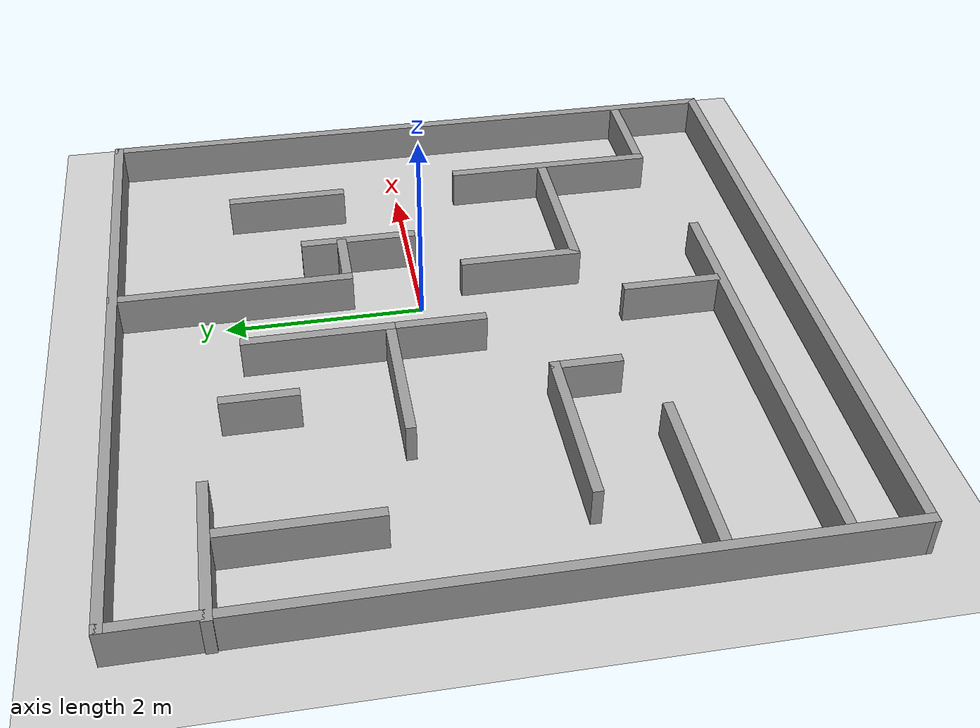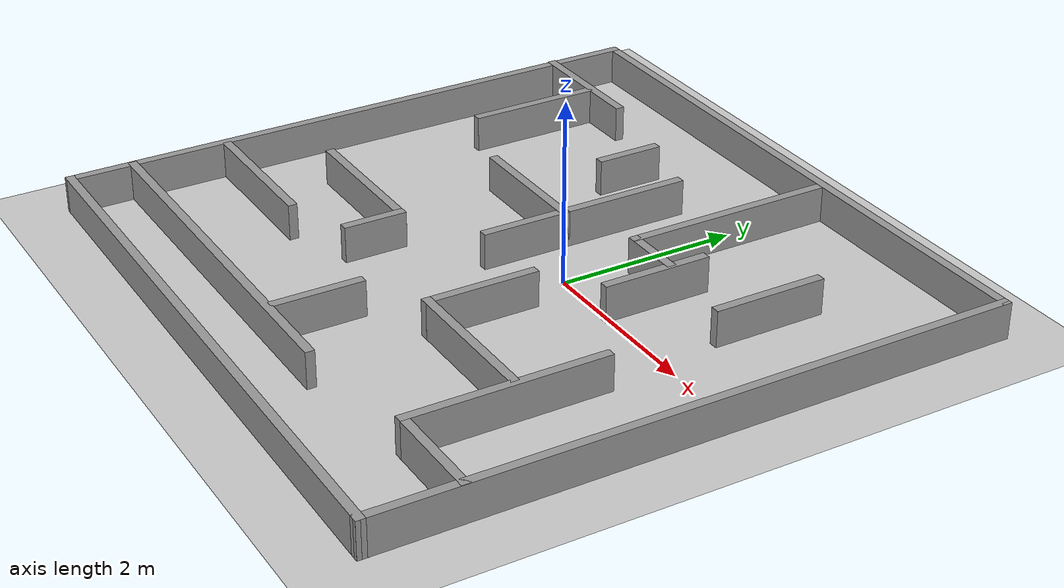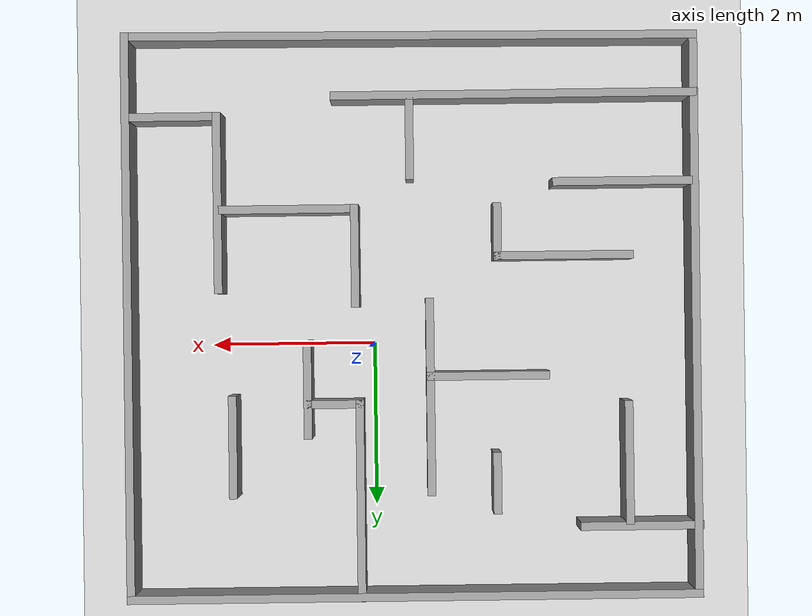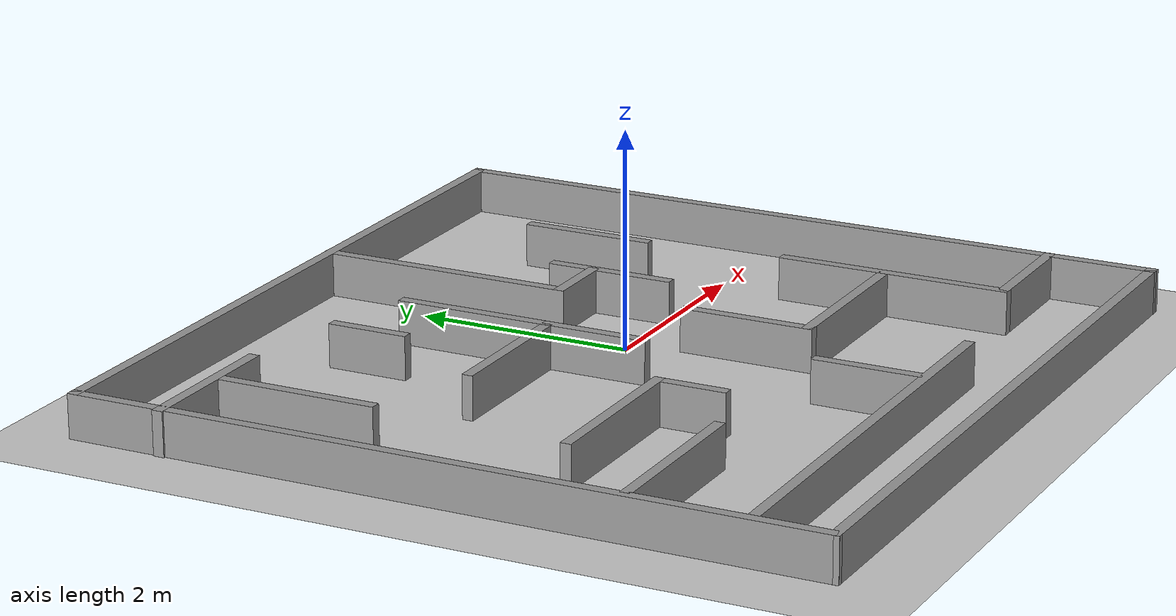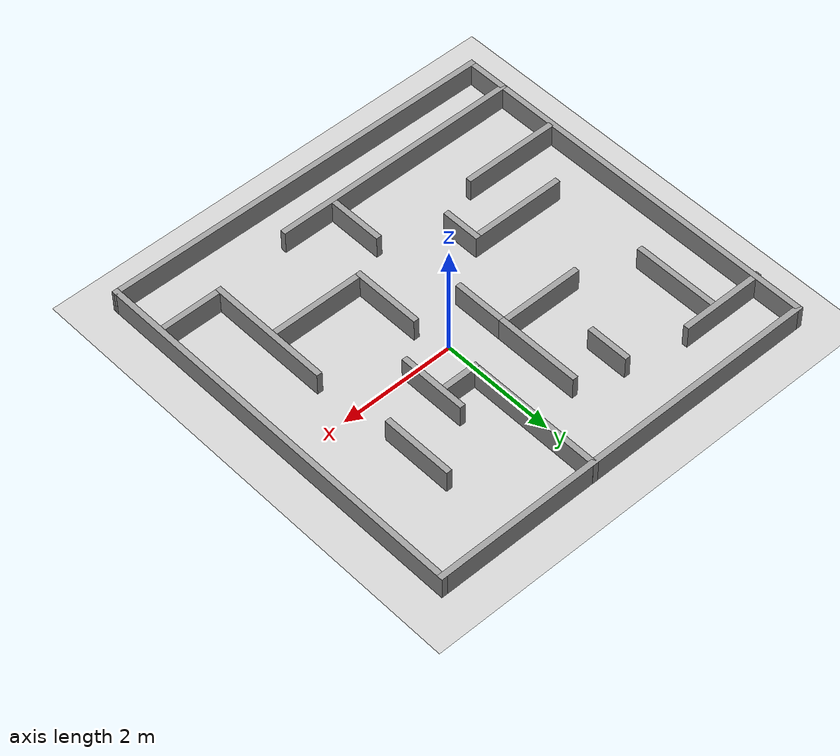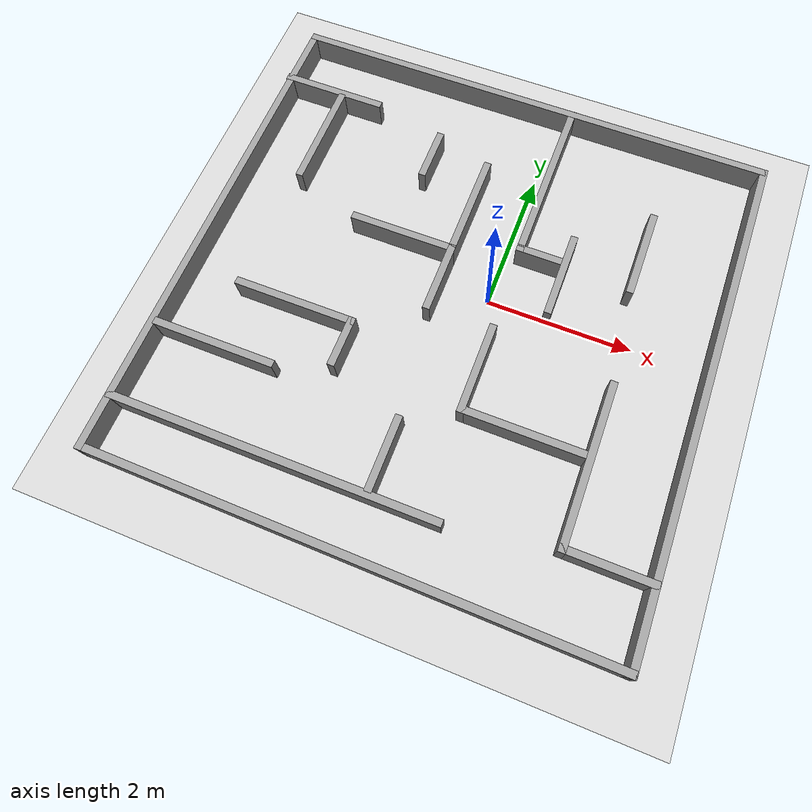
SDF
<sdf version="1.7">
 <world name="default">
  <light name="sun" type="directional">
   <pose>0 0 10 0 -0 0</pose>
   <diffuse>0.8 0.8 0.8 1</diffuse>
   <specular>0.2 0.2 0.2 1</specular>
   <attenuation>
    <range>1000</range>
    <constant>0.9</constant>
    <linear>0.01</linear>
    <quadratic>0.001</quadratic>
   </attenuation>
   <direction>-0.5 0.1 -0.9</direction>
   <spot><inner_angle>0</inner_angle><outer_angle>0</outer_angle><falloff>0</falloff></spot>
  </light>
  <model name="ground_plane">
   <static>1</static>
   <link name="link">
    <collision name="collision">
     <geometry><plane><normal>0 0 1</normal><size>100 100</size></plane></geometry>
     <surface>
      <contact><collide_bitmask>65535</collide_bitmask></contact>
      <friction><ode><mu>100</mu><mu2>50</mu2></ode></friction>
     </surface>
    </collision>
    <visual name="visual">
     <cast_shadows>0</cast_shadows>
     <geometry><plane><normal>0 0 1</normal><size>100 100</size></plane></geometry>
     <material>
      <script><uri>file://media/materials/scripts/gazebo.material</uri><name>Gazebo/Grey</name></script>
     </material>
    </visual>
   </link>
  </model>
  <gravity>0 0 -9.8</gravity>
  <magnetic_field>6e-06 2.3e-05 -4.2e-05</magnetic_field>
  <atmosphere type="adiabatic"/>
  <physics type="ode">
   <max_step_size>0.001</max_step_size>
   <real_time_factor>1</real_time_factor>
   <real_time_update_rate>1000</real_time_update_rate>
  </physics>
  <scene><ambient>0.4 0.4 0.4 1</ambient><background>0.7 0.7 0.7 1</background><shadows>1</shadows></scene>
  <spherical_coordinates>
   <surface_model>EARTH_WGS84</surface_model>
   <latitude_deg>0</latitude_deg>
   <longitude_deg>0</longitude_deg>
   <elevation>0</elevation>
   <heading_deg>0</heading_deg>
  </spherical_coordinates>
  <model name="newmap.world">
   <pose>-0.470645 -0.340979 0 0 -0 0</pose>
   <link name="Wall_0">
    <collision name="Wall_0_Collision">
     <geometry><box><size>7 0.1 0.4</size></box></geometry>
     <pose>0 0 0.2 0 -0 0</pose>
    </collision>
    <visual name="Wall_0_Visual">
     <pose>0 0 0.2 0 -0 0</pose>
     <geometry><box><size>7 0.1 0.4</size></box></geometry>
     <material>
      <script><uri>file://media/materials/scripts/gazebo.material</uri><name>Gazebo/Grey</name></script>
      <ambient>1 1 1 1</ambient>
     </material>
     <meta><layer>0</layer></meta>
    </visual>
    <pose>0.008319 3.41883 0 0 -0 0</pose>
   </link>
   <link name="Wall_1">
    <collision name="Wall_1_Collision">
     <geometry><box><size>6.93931 0.1 0.4</size></box></geometry>
     <pose>0 0 0.2 0 -0 0</pose>
    </collision>
    <visual name="Wall_1_Visual">
     <pose>0 0 0.2 0 -0 0</pose>
     <geometry><box><size>6.93931 0.1 0.4</size></box></geometry>
     <material>
      <script><uri>file://media/materials/scripts/gazebo.material</uri><name>Gazebo/Grey</name></script>
      <ambient>1 1 1 1</ambient>
     </material>
     <meta><layer>0</layer></meta>
    </visual>
    <pose>3.45832 -0.000813 0 0 -0 -1.5708</pose>
   </link>
   <link name="Wall_10">
    <collision name="Wall_10_Collision">
     <geometry><box><size>0.75 0.1 0.4</size></box></geometry>
     <pose>0 0 0.2 0 -0 0</pose>
    </collision>
    <visual name="Wall_10_Visual">
     <pose>0 0 0.2 0 -0 0</pose>
     <geometry><box><size>0.75 0.1 0.4</size></box></geometry>
     <material>
      <script><uri>file://media/materials/scripts/gazebo.material</uri><name>Gazebo/Grey</name></script>
      <ambient>1 1 1 1</ambient>
     </material>
     <meta><layer>0</layer></meta>
    </visual>
    <pose>-1.00868 2.05483 0 0 -0 -1.5708</pose>
   </link>
   <link name="Wall_13">
    <collision name="Wall_13_Collision">
     <geometry><box><size>2.44997 0.1 0.4</size></box></geometry>
     <pose>0 0 0.2 0 -0 0</pose>
    </collision>
    <visual name="Wall_13_Visual">
     <pose>0 0 0.2 0 -0 0</pose>
     <geometry><box><size>2.44997 0.1 0.4</size></box></geometry>
     <material>
      <script><uri>file://media/materials/scripts/gazebo.material</uri><name>Gazebo/Grey</name></script>
      <ambient>1 1 1 1</ambient>
     </material>
     <meta><layer>0</layer></meta>
    </visual>
    <pose>0.654319 2.24583 0 0 -0 -1.5708</pose>
   </link>
   <link name="Wall_17">
    <collision name="Wall_17_Collision">
     <geometry><box><size>4.45031 0.1 0.4</size></box></geometry>
     <pose>0 0 0.2 0 -0 0</pose>
    </collision>
    <visual name="Wall_17_Visual">
     <pose>0 0 0.2 0 -0 0</pose>
     <geometry><box><size>4.45031 0.1 0.4</size></box></geometry>
     <material>
      <script><uri>file://media/materials/scripts/gazebo.material</uri><name>Gazebo/Grey</name></script>
      <ambient>1 1 1 1</ambient>
     </material>
     <meta><layer>0</layer></meta>
    </visual>
    <pose>-1.25368 -2.67317 0 0 -0 0</pose>
   </link>
   <link name="Wall_19">
    <collision name="Wall_19_Collision">
     <geometry><box><size>1.69981 0.1 0.4</size></box></geometry>
     <pose>0 0 0.2 0 -0 0</pose>
    </collision>
    <visual name="Wall_19_Visual">
     <pose>0 0 0.2 0 -0 0</pose>
     <geometry><box><size>1.69981 0.1 0.4</size></box></geometry>
     <material>
      <script><uri>file://media/materials/scripts/gazebo.material</uri><name>Gazebo/Grey</name></script>
      <ambient>1 1 1 1</ambient>
     </material>
     <meta><layer>0</layer></meta>
    </visual>
    <pose>-2.56768 -1.60017 0 0 -0 0</pose>
   </link>
   <link name="Wall_2">
    <collision name="Wall_2_Collision">
     <geometry><box><size>7.00018 0.1 0.4</size></box></geometry>
     <pose>0 0 0.2 0 -0 0</pose>
    </collision>
    <visual name="Wall_2_Visual">
     <pose>0 0 0.2 0 -0 0</pose>
     <geometry><box><size>7.00018 0.1 0.4</size></box></geometry>
     <material>
      <script><uri>file://media/materials/scripts/gazebo.material</uri><name>Gazebo/Grey</name></script>
      <ambient>1 1 1 1</ambient>
     </material>
     <meta><layer>0</layer></meta>
    </visual>
    <pose>0.008319 -3.39546 0 0 -0 3.13435</pose>
   </link>
   <link name="Wall_21">
    <collision name="Wall_21_Collision">
     <geometry><box><size>1 0.1 0.4</size></box></geometry>
     <pose>0 0 0.2 0 -0 0</pose>
    </collision>
    <visual name="Wall_21_Visual">
     <pose>0 0 0.2 0 -0 0</pose>
     <geometry><box><size>1 0.1 0.4</size></box></geometry>
     <material>
      <script><uri>file://media/materials/scripts/gazebo.material</uri><name>Gazebo/Grey</name></script>
      <ambient>1 1 1 1</ambient>
     </material>
     <meta><layer>0</layer></meta>
    </visual>
    <pose>-0.208681 0.295407 0 0 -0 -1.5708</pose>
   </link>
   <link name="Wall_24">
    <collision name="Wall_24_Collision">
     <geometry><box><size>1.69971 0.1 0.4</size></box></geometry>
     <pose>0 0 0.2 0 -0 0</pose>
    </collision>
    <visual name="Wall_24_Visual">
     <pose>0 0 0.2 0 -0 0</pose>
     <geometry><box><size>1.69971 0.1 0.4</size></box></geometry>
     <material>
      <script><uri>file://media/materials/scripts/gazebo.material</uri><name>Gazebo/Grey</name></script>
      <ambient>1 1 1 1</ambient>
     </material>
     <meta><layer>0</layer></meta>
    </visual>
    <pose>-1.84168 -0.708168 0 0 -0 0</pose>
   </link>
   <link name="Wall_25">
    <collision name="Wall_25_Collision">
     <geometry><box><size>0.699518 0.1 0.4</size></box></geometry>
     <pose>0 0 0.2 0 -0 0</pose>
    </collision>
    <visual name="Wall_25_Visual">
     <pose>0 0 0.2 0 -0 0</pose>
     <geometry><box><size>0.699518 0.1 0.4</size></box></geometry>
     <material>
      <script><uri>file://media/materials/scripts/gazebo.material</uri><name>Gazebo/Grey</name></script>
      <ambient>1 1 1 1</ambient>
     </material>
     <meta><layer>0</layer></meta>
    </visual>
    <pose>-1.04168 -1.00817 0 0 -0 -1.5708</pose>
   </link>
   <link name="Wall_27">
    <collision name="Wall_27_Collision">
     <geometry><box><size>1.25 0.1 0.4</size></box></geometry>
     <pose>0 0 0.2 0 -0 0</pose>
    </collision>
    <visual name="Wall_27_Visual">
     <pose>0 0 0.2 0 -0 0</pose>
     <geometry><box><size>1.25 0.1 0.4</size></box></geometry>
     <material>
      <script><uri>file://media/materials/scripts/gazebo.material</uri><name>Gazebo/Grey</name></script>
      <ambient>1 1 1 1</ambient>
     </material>
     <meta><layer>0</layer></meta>
    </visual>
    <pose>0.691319 -0.72938 0 0 -0 -1.5708</pose>
   </link>
   <link name="Wall_29">
    <collision name="Wall_29_Collision">
     <geometry><box><size>0.7 0.1 0.4</size></box></geometry>
     <pose>0 0 0.2 0 -0 0</pose>
    </collision>
    <visual name="Wall_29_Visual">
     <pose>0 0 0.2 0 -0 0</pose>
     <geometry><box><size>0.7 0.1 0.4</size></box></geometry>
     <material>
      <script><uri>file://media/materials/scripts/gazebo.material</uri><name>Gazebo/Grey</name></script>
      <ambient>1 1 1 1</ambient>
     </material>
     <meta><layer>0</layer></meta>
    </visual>
    <pose>0.954319 1.07083 0 0 -0 0</pose>
   </link>
   <link name="Wall_3">
    <collision name="Wall_3_Collision">
     <geometry><box><size>6.88931 0.1 0.4</size></box></geometry>
     <pose>0 0 0.2 0 -0 0</pose>
    </collision>
    <visual name="Wall_3_Visual">
     <pose>0 0 0.2 0 -0 0</pose>
     <geometry><box><size>6.88931 0.1 0.4</size></box></geometry>
     <material>
      <script><uri>file://media/materials/scripts/gazebo.material</uri><name>Gazebo/Grey</name></script>
      <ambient>1 1 1 1</ambient>
     </material>
     <meta><layer>0</layer></meta>
    </visual>
    <pose>-3.44168 0.024187 0 0 -0 1.5708</pose>
   </link>
   <link name="Wall_31">
    <collision name="Wall_31_Collision">
     <geometry><box><size>1.19964 0.1 0.4</size></box></geometry>
     <pose>0 0 0.2 0 -0 0</pose>
    </collision>
    <visual name="Wall_31_Visual">
     <pose>0 0 0.2 0 -0 0</pose>
     <geometry><box><size>1.19964 0.1 0.4</size></box></geometry>
     <material>
      <script><uri>file://media/materials/scripts/gazebo.material</uri><name>Gazebo/Grey</name></script>
      <ambient>1 1 1 1</ambient>
     </material>
     <meta><layer>0</layer></meta>
    </visual>
    <pose>1.28532 0.892832 0 0 -0 -1.5708</pose>
   </link>
   <link name="Wall_33">
    <collision name="Wall_33_Collision">
     <geometry><box><size>1.25 0.1 0.4</size></box></geometry>
     <pose>0 0 0.2 0 -0 0</pose>
    </collision>
    <visual name="Wall_33_Visual">
     <pose>0 0 0.2 0 -0 0</pose>
     <geometry><box><size>1.25 0.1 0.4</size></box></geometry>
     <material>
      <script><uri>file://media/materials/scripts/gazebo.material</uri><name>Gazebo/Grey</name></script>
      <ambient>1 1 1 1</ambient>
     </material>
     <meta><layer>0</layer></meta>
    </visual>
    <pose>2.20032 1.57983 0 0 -0 -1.5708</pose>
   </link>
   <link name="Wall_35">
    <collision name="Wall_35_Collision">
     <geometry><box><size>1.7 0.1 0.4</size></box></geometry>
     <pose>0 0 0.2 0 -0 0</pose>
    </collision>
    <visual name="Wall_35_Visual">
     <pose>0 0 0.2 0 -0 0</pose>
     <geometry><box><size>1.7 0.1 0.4</size></box></geometry>
     <material>
      <script><uri>file://media/materials/scripts/gazebo.material</uri><name>Gazebo/Grey</name></script>
      <ambient>1 1 1 1</ambient>
     </material>
     <meta><layer>0</layer></meta>
    </visual>
    <pose>1.49132 -1.30417 0 0 -0 0</pose>
   </link>
   <link name="Wall_37">
    <collision name="Wall_37_Collision">
     <geometry><box><size>2.20021 0.1 0.4</size></box></geometry>
     <pose>0 0 0.2 0 -0 0</pose>
    </collision>
    <visual name="Wall_37_Visual">
     <pose>0 0 0.2 0 -0 0</pose>
     <geometry><box><size>2.20021 0.1 0.4</size></box></geometry>
     <material>
      <script><uri>file://media/materials/scripts/gazebo.material</uri><name>Gazebo/Grey</name></script>
      <ambient>1 1 1 1</ambient>
     </material>
     <meta><layer>0</layer></meta>
    </visual>
    <pose>2.35332 -1.39217 0 0 -0 -1.5708</pose>
   </link>
   <link name="Wall_39">
    <collision name="Wall_39_Collision">
     <geometry><box><size>1 0.1 0.4</size></box></geometry>
     <pose>0 0 0.2 0 -0 0</pose>
    </collision>
    <visual name="Wall_39_Visual">
     <pose>0 0 0.2 0 -0 0</pose>
     <geometry><box><size>1 0.1 0.4</size></box></geometry>
     <material>
      <script><uri>file://media/materials/scripts/gazebo.material</uri><name>Gazebo/Grey</name></script>
      <ambient>1 1 1 1</ambient>
     </material>
     <meta><layer>0</layer></meta>
    </visual>
    <pose>0.013319 -2.14717 0 0 -0 1.5708</pose>
   </link>
   <link name="Wall_43">
    <collision name="Wall_43_Collision">
     <geometry><box><size>1.5 0.1 0.4</size></box></geometry>
     <pose>0 0 0.2 0 -0 0</pose>
    </collision>
    <visual name="Wall_43_Visual">
     <pose>0 0 0.2 0 -0 0</pose>
     <geometry><box><size>1.5 0.1 0.4</size></box></geometry>
     <material>
      <script><uri>file://media/materials/scripts/gazebo.material</uri><name>Gazebo/Grey</name></script>
      <ambient>1 1 1 1</ambient>
     </material>
     <meta><layer>0</layer></meta>
    </visual>
    <pose>-2.61268 1.81783 0 0 -0 -1.5708</pose>
   </link>
   <link name="Wall_45">
    <collision name="Wall_45_Collision">
     <geometry><box><size>1.2 0.1 0.4</size></box></geometry>
     <pose>0 0 0.2 0 -0 0</pose>
    </collision>
    <visual name="Wall_45_Visual">
     <pose>0 0 0.2 0 -0 0</pose>
     <geometry><box><size>1.2 0.1 0.4</size></box></geometry>
     <material>
      <script><uri>file://media/materials/scripts/gazebo.material</uri><name>Gazebo/Grey</name></script>
      <ambient>1 1 1 1</ambient>
     </material>
     <meta><layer>0</layer></meta>
    </visual>
    <pose>2.90332 -2.44217 0 0 -0 0</pose>
   </link>
   <link name="Wall_5">
    <collision name="Wall_5_Collision">
     <geometry><box><size>1.5 0.1 0.4</size></box></geometry>
     <pose>0 0 0.2 0 -0 0</pose>
    </collision>
    <visual name="Wall_5_Visual">
     <pose>0 0 0.2 0 -0 0</pose>
     <geometry><box><size>1.5 0.1 0.4</size></box></geometry>
     <material>
      <script><uri>file://media/materials/scripts/gazebo.material</uri><name>Gazebo/Grey</name></script>
      <ambient>1 1 1 1</ambient>
     </material>
     <meta><layer>0</layer></meta>
    </visual>
    <pose>-2.75868 2.58883 0 0 -0 0</pose>
   </link>
   <link name="Wall_7">
    <collision name="Wall_7_Collision">
     <geometry><box><size>1.5 0.1 0.4</size></box></geometry>
     <pose>0 0 0.2 0 -0 0</pose>
    </collision>
    <visual name="Wall_7_Visual">
     <pose>0 0 0.2 0 -0 0</pose>
     <geometry><box><size>1.5 0.1 0.4</size></box></geometry>
     <material>
      <script><uri>file://media/materials/scripts/gazebo.material</uri><name>Gazebo/Grey</name></script>
      <ambient>1 1 1 1</ambient>
     </material>
     <meta><layer>0</layer></meta>
    </visual>
    <pose>-0.908681 0.745407 0 0 -0 0</pose>
   </link>
   <link name="Wall_8">
    <collision name="Wall_8_Collision">
     <geometry><box><size>1.5 0.1 0.4</size></box></geometry>
     <pose>0 0 0.2 0 -0 0</pose>
    </collision>
    <visual name="Wall_8_Visual">
     <pose>0 0 0.2 0 -0 0</pose>
     <geometry><box><size>1.5 0.1 0.4</size></box></geometry>
     <material>
      <script><uri>file://media/materials/scripts/gazebo.material</uri><name>Gazebo/Grey</name></script>
      <ambient>1 1 1 1</ambient>
     </material>
     <meta><layer>0</layer></meta>
    </visual>
    <pose>-0.208681 1.44541 0 0 -0 1.5708</pose>
   </link>
   <static>1</static>
  </model>
 </world>
</sdf>
